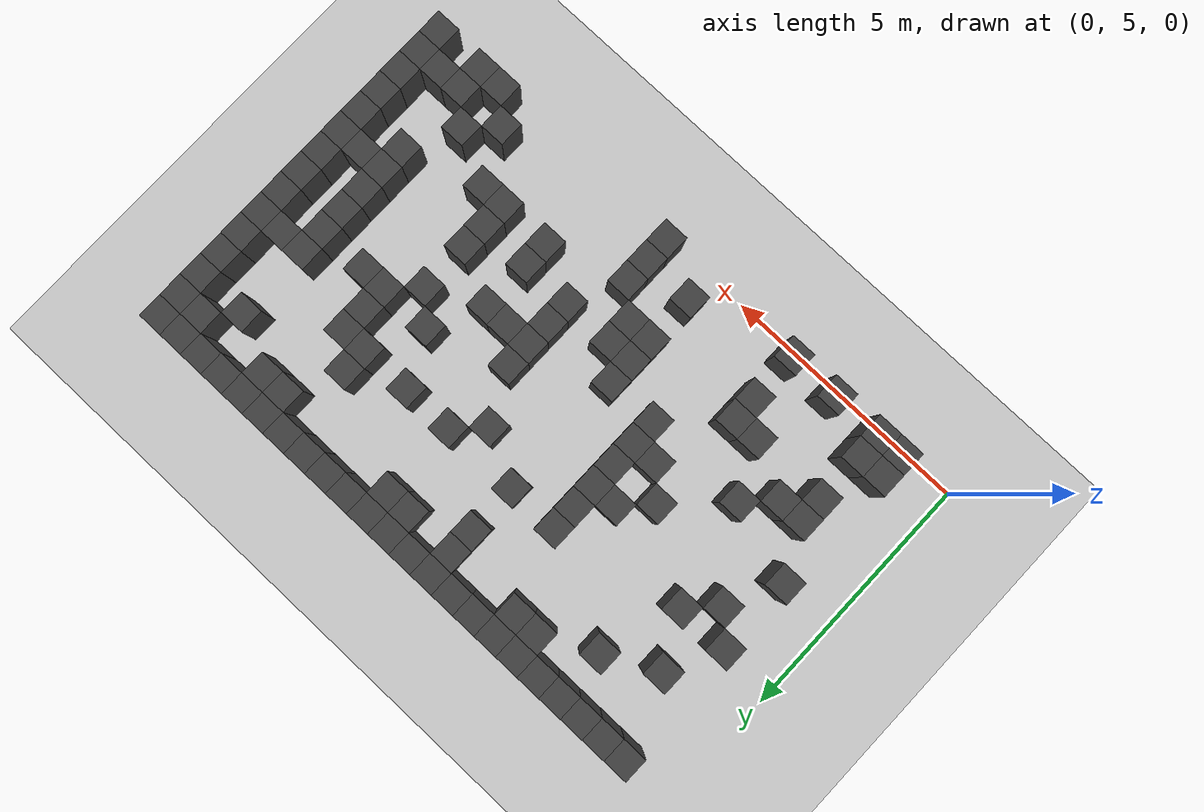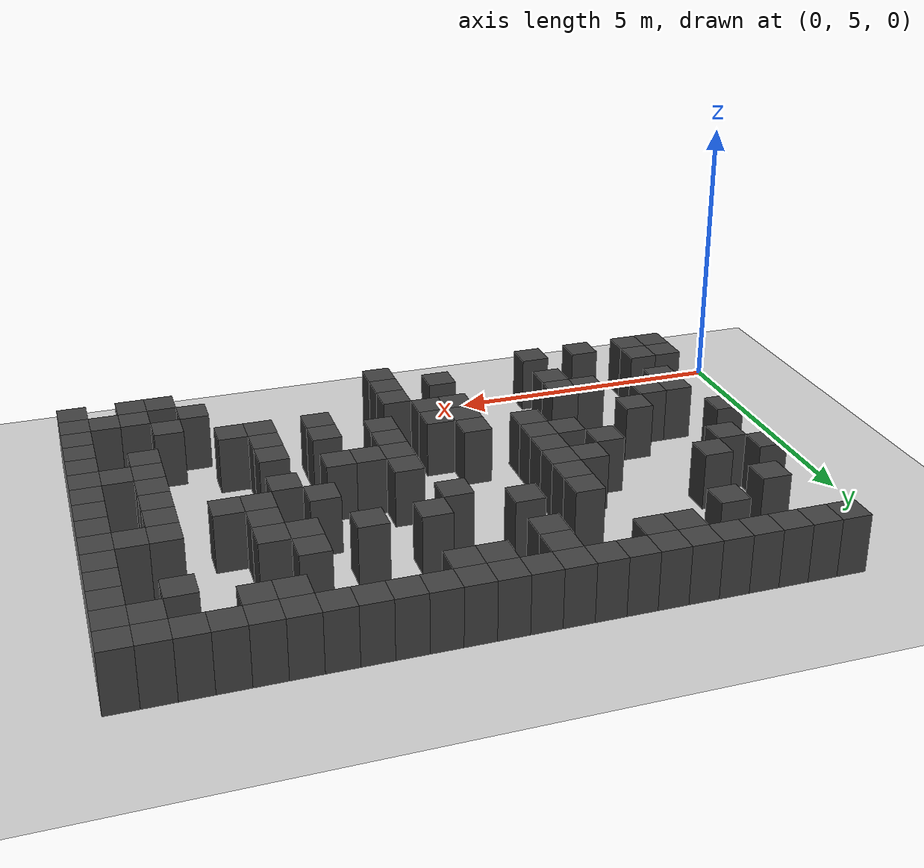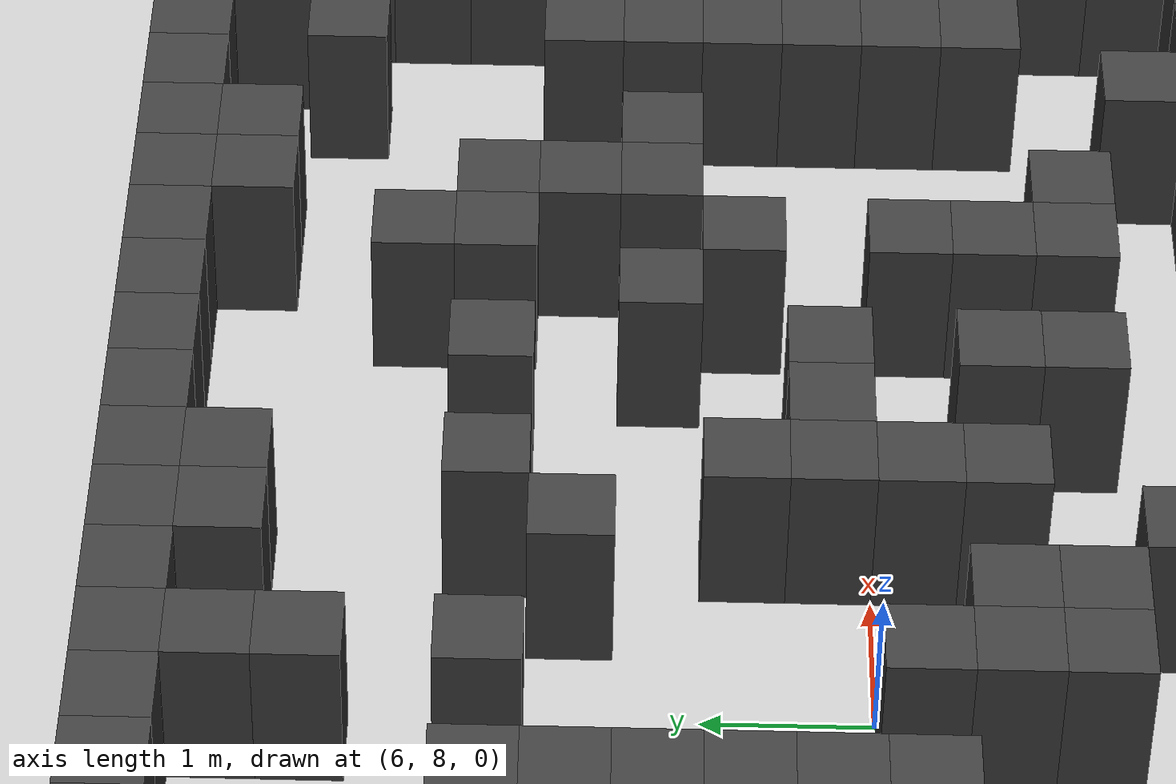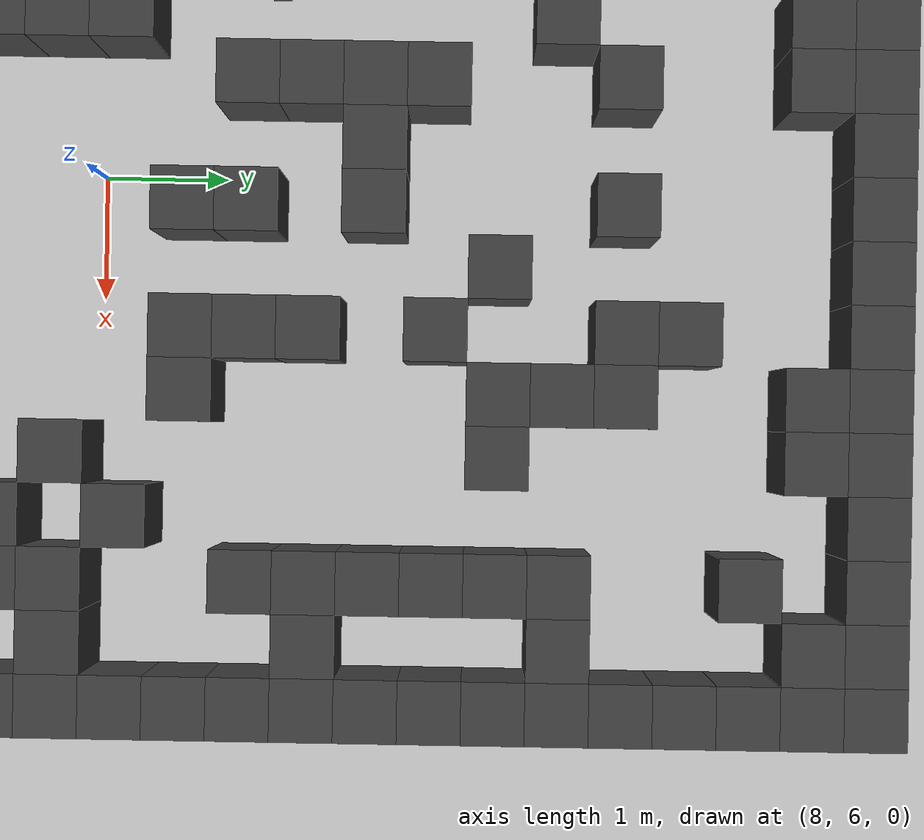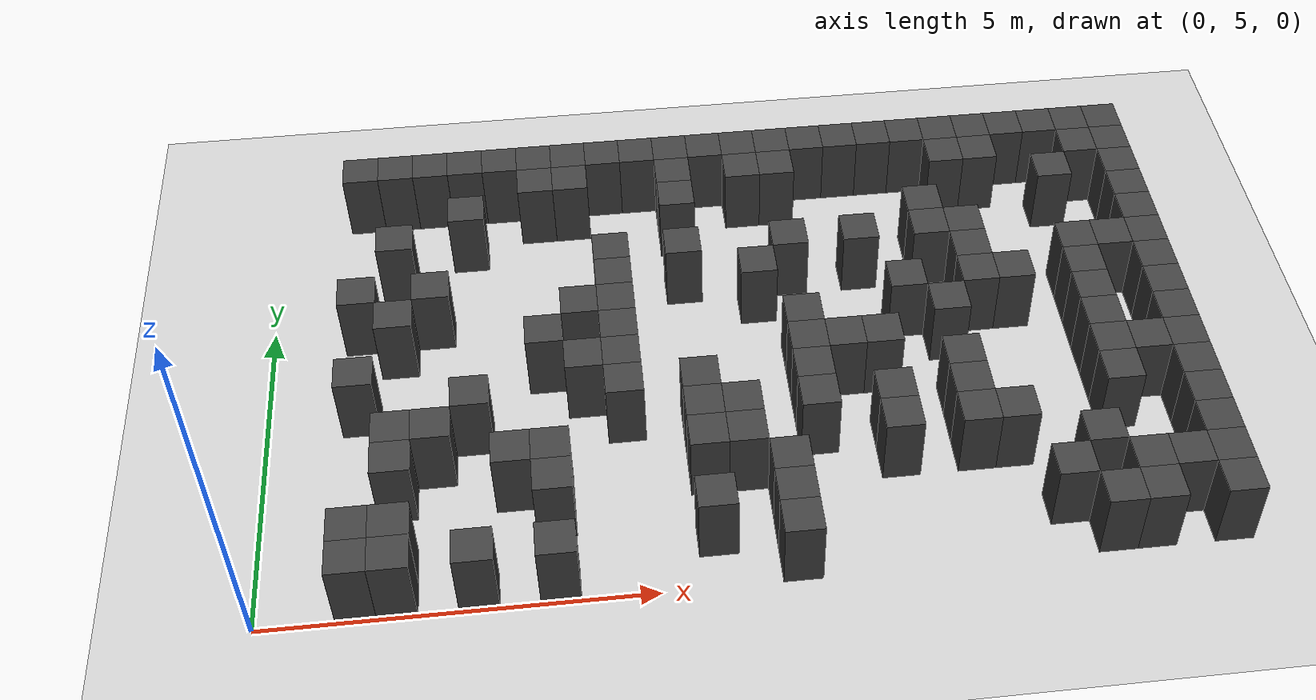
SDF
<sdf version="1.7">
 <world name="map_4818">
  <model name="ground_plane">
   <static>true</static>
   <link name="link">
    <collision name="collision">
     <geometry><plane><normal>0 0 1</normal><size>200 200</size></plane></geometry>
    </collision>
    <visual name="visual">
     <geometry><plane><normal>0 0 1</normal><size>200 200</size></plane></geometry>
     <material><ambient>0.8 0.8 0.8 1</ambient><diffuse>0.8 0.8 0.8 1</diffuse></material>
    </visual>
   </link>
  </model>
  <model name="maze_environment">
   <static>true</static>
   <link name="wall_27">
    <pose>1.250 12.250 0.500 0 0 0</pose>
    <collision name="col"><geometry><box><size>0.5 0.5 1.0</size></box></geometry></collision>
    <visual name="vis">
     <geometry><box><size>0.5 0.5 1.0</size></box></geometry>
     <material><ambient>0.15 0.15 0.15 1</ambient><diffuse>0.25 0.25 0.25 1</diffuse></material>
    </visual>
   </link>
   <link name="wall_28">
    <pose>1.750 12.250 0.500 0 0 0</pose>
    <collision name="col"><geometry><box><size>0.5 0.5 1.0</size></box></geometry></collision>
    <visual name="vis">
     <geometry><box><size>0.5 0.5 1.0</size></box></geometry>
     <material><ambient>0.15 0.15 0.15 1</ambient><diffuse>0.25 0.25 0.25 1</diffuse></material>
    </visual>
   </link>
   <link name="wall_29">
    <pose>2.250 12.250 0.500 0 0 0</pose>
    <collision name="col"><geometry><box><size>0.5 0.5 1.0</size></box></geometry></collision>
    <visual name="vis">
     <geometry><box><size>0.5 0.5 1.0</size></box></geometry>
     <material><ambient>0.15 0.15 0.15 1</ambient><diffuse>0.25 0.25 0.25 1</diffuse></material>
    </visual>
   </link>
   <link name="wall_30">
    <pose>2.750 12.250 0.500 0 0 0</pose>
    <collision name="col"><geometry><box><size>0.5 0.5 1.0</size></box></geometry></collision>
    <visual name="vis">
     <geometry><box><size>0.5 0.5 1.0</size></box></geometry>
     <material><ambient>0.15 0.15 0.15 1</ambient><diffuse>0.25 0.25 0.25 1</diffuse></material>
    </visual>
   </link>
   <link name="wall_31">
    <pose>3.250 12.250 0.500 0 0 0</pose>
    <collision name="col"><geometry><box><size>0.5 0.5 1.0</size></box></geometry></collision>
    <visual name="vis">
     <geometry><box><size>0.5 0.5 1.0</size></box></geometry>
     <material><ambient>0.15 0.15 0.15 1</ambient><diffuse>0.25 0.25 0.25 1</diffuse></material>
    </visual>
   </link>
   <link name="wall_32">
    <pose>3.750 12.250 0.500 0 0 0</pose>
    <collision name="col"><geometry><box><size>0.5 0.5 1.0</size></box></geometry></collision>
    <visual name="vis">
     <geometry><box><size>0.5 0.5 1.0</size></box></geometry>
     <material><ambient>0.15 0.15 0.15 1</ambient><diffuse>0.25 0.25 0.25 1</diffuse></material>
    </visual>
   </link>
   <link name="wall_33">
    <pose>4.250 12.250 0.500 0 0 0</pose>
    <collision name="col"><geometry><box><size>0.5 0.5 1.0</size></box></geometry></collision>
    <visual name="vis">
     <geometry><box><size>0.5 0.5 1.0</size></box></geometry>
     <material><ambient>0.15 0.15 0.15 1</ambient><diffuse>0.25 0.25 0.25 1</diffuse></material>
    </visual>
   </link>
   <link name="wall_34">
    <pose>4.750 12.250 0.500 0 0 0</pose>
    <collision name="col"><geometry><box><size>0.5 0.5 1.0</size></box></geometry></collision>
    <visual name="vis">
     <geometry><box><size>0.5 0.5 1.0</size></box></geometry>
     <material><ambient>0.15 0.15 0.15 1</ambient><diffuse>0.25 0.25 0.25 1</diffuse></material>
    </visual>
   </link>
   <link name="wall_35">
    <pose>5.250 12.250 0.500 0 0 0</pose>
    <collision name="col"><geometry><box><size>0.5 0.5 1.0</size></box></geometry></collision>
    <visual name="vis">
     <geometry><box><size>0.5 0.5 1.0</size></box></geometry>
     <material><ambient>0.15 0.15 0.15 1</ambient><diffuse>0.25 0.25 0.25 1</diffuse></material>
    </visual>
   </link>
   <link name="wall_36">
    <pose>5.750 12.250 0.500 0 0 0</pose>
    <collision name="col"><geometry><box><size>0.5 0.5 1.0</size></box></geometry></collision>
    <visual name="vis">
     <geometry><box><size>0.5 0.5 1.0</size></box></geometry>
     <material><ambient>0.15 0.15 0.15 1</ambient><diffuse>0.25 0.25 0.25 1</diffuse></material>
    </visual>
   </link>
   <link name="wall_37">
    <pose>6.250 12.250 0.500 0 0 0</pose>
    <collision name="col"><geometry><box><size>0.5 0.5 1.0</size></box></geometry></collision>
    <visual name="vis">
     <geometry><box><size>0.5 0.5 1.0</size></box></geometry>
     <material><ambient>0.15 0.15 0.15 1</ambient><diffuse>0.25 0.25 0.25 1</diffuse></material>
    </visual>
   </link>
   <link name="wall_38">
    <pose>6.750 12.250 0.500 0 0 0</pose>
    <collision name="col"><geometry><box><size>0.5 0.5 1.0</size></box></geometry></collision>
    <visual name="vis">
     <geometry><box><size>0.5 0.5 1.0</size></box></geometry>
     <material><ambient>0.15 0.15 0.15 1</ambient><diffuse>0.25 0.25 0.25 1</diffuse></material>
    </visual>
   </link>
   <link name="wall_39">
    <pose>7.250 12.250 0.500 0 0 0</pose>
    <collision name="col"><geometry><box><size>0.5 0.5 1.0</size></box></geometry></collision>
    <visual name="vis">
     <geometry><box><size>0.5 0.5 1.0</size></box></geometry>
     <material><ambient>0.15 0.15 0.15 1</ambient><diffuse>0.25 0.25 0.25 1</diffuse></material>
    </visual>
   </link>
   <link name="wall_40">
    <pose>7.750 12.250 0.500 0 0 0</pose>
    <collision name="col"><geometry><box><size>0.5 0.5 1.0</size></box></geometry></collision>
    <visual name="vis">
     <geometry><box><size>0.5 0.5 1.0</size></box></geometry>
     <material><ambient>0.15 0.15 0.15 1</ambient><diffuse>0.25 0.25 0.25 1</diffuse></material>
    </visual>
   </link>
   <link name="wall_41">
    <pose>8.250 12.250 0.500 0 0 0</pose>
    <collision name="col"><geometry><box><size>0.5 0.5 1.0</size></box></geometry></collision>
    <visual name="vis">
     <geometry><box><size>0.5 0.5 1.0</size></box></geometry>
     <material><ambient>0.15 0.15 0.15 1</ambient><diffuse>0.25 0.25 0.25 1</diffuse></material>
    </visual>
   </link>
   <link name="wall_42">
    <pose>8.750 12.250 0.500 0 0 0</pose>
    <collision name="col"><geometry><box><size>0.5 0.5 1.0</size></box></geometry></collision>
    <visual name="vis">
     <geometry><box><size>0.5 0.5 1.0</size></box></geometry>
     <material><ambient>0.15 0.15 0.15 1</ambient><diffuse>0.25 0.25 0.25 1</diffuse></material>
    </visual>
   </link>
   <link name="wall_43">
    <pose>9.250 12.250 0.500 0 0 0</pose>
    <collision name="col"><geometry><box><size>0.5 0.5 1.0</size></box></geometry></collision>
    <visual name="vis">
     <geometry><box><size>0.5 0.5 1.0</size></box></geometry>
     <material><ambient>0.15 0.15 0.15 1</ambient><diffuse>0.25 0.25 0.25 1</diffuse></material>
    </visual>
   </link>
   <link name="wall_44">
    <pose>9.750 12.250 0.500 0 0 0</pose>
    <collision name="col"><geometry><box><size>0.5 0.5 1.0</size></box></geometry></collision>
    <visual name="vis">
     <geometry><box><size>0.5 0.5 1.0</size></box></geometry>
     <material><ambient>0.15 0.15 0.15 1</ambient><diffuse>0.25 0.25 0.25 1</diffuse></material>
    </visual>
   </link>
   <link name="wall_45">
    <pose>10.250 12.250 0.500 0 0 0</pose>
    <collision name="col"><geometry><box><size>0.5 0.5 1.0</size></box></geometry></collision>
    <visual name="vis">
     <geometry><box><size>0.5 0.5 1.0</size></box></geometry>
     <material><ambient>0.15 0.15 0.15 1</ambient><diffuse>0.25 0.25 0.25 1</diffuse></material>
    </visual>
   </link>
   <link name="wall_46">
    <pose>10.750 12.250 0.500 0 0 0</pose>
    <collision name="col"><geometry><box><size>0.5 0.5 1.0</size></box></geometry></collision>
    <visual name="vis">
     <geometry><box><size>0.5 0.5 1.0</size></box></geometry>
     <material><ambient>0.15 0.15 0.15 1</ambient><diffuse>0.25 0.25 0.25 1</diffuse></material>
    </visual>
   </link>
   <link name="wall_47">
    <pose>11.250 12.250 0.500 0 0 0</pose>
    <collision name="col"><geometry><box><size>0.5 0.5 1.0</size></box></geometry></collision>
    <visual name="vis">
     <geometry><box><size>0.5 0.5 1.0</size></box></geometry>
     <material><ambient>0.15 0.15 0.15 1</ambient><diffuse>0.25 0.25 0.25 1</diffuse></material>
    </visual>
   </link>
   <link name="wall_48">
    <pose>11.750 12.250 0.500 0 0 0</pose>
    <collision name="col"><geometry><box><size>0.5 0.5 1.0</size></box></geometry></collision>
    <visual name="vis">
     <geometry><box><size>0.5 0.5 1.0</size></box></geometry>
     <material><ambient>0.15 0.15 0.15 1</ambient><diffuse>0.25 0.25 0.25 1</diffuse></material>
    </visual>
   </link>
   <link name="wall_49">
    <pose>12.250 12.250 0.500 0 0 0</pose>
    <collision name="col"><geometry><box><size>0.5 0.5 1.0</size></box></geometry></collision>
    <visual name="vis">
     <geometry><box><size>0.5 0.5 1.0</size></box></geometry>
     <material><ambient>0.15 0.15 0.15 1</ambient><diffuse>0.25 0.25 0.25 1</diffuse></material>
    </visual>
   </link>
   <link name="wall_57">
    <pose>3.750 11.750 0.500 0 0 0</pose>
    <collision name="col"><geometry><box><size>0.5 0.5 1.0</size></box></geometry></collision>
    <visual name="vis">
     <geometry><box><size>0.5 0.5 1.0</size></box></geometry>
     <material><ambient>0.15 0.15 0.15 1</ambient><diffuse>0.25 0.25 0.25 1</diffuse></material>
    </visual>
   </link>
   <link name="wall_58">
    <pose>4.250 11.750 0.500 0 0 0</pose>
    <collision name="col"><geometry><box><size>0.5 0.5 1.0</size></box></geometry></collision>
    <visual name="vis">
     <geometry><box><size>0.5 0.5 1.0</size></box></geometry>
     <material><ambient>0.15 0.15 0.15 1</ambient><diffuse>0.25 0.25 0.25 1</diffuse></material>
    </visual>
   </link>
   <link name="wall_59">
    <pose>5.750 11.750 0.500 0 0 0</pose>
    <collision name="col"><geometry><box><size>0.5 0.5 1.0</size></box></geometry></collision>
    <visual name="vis">
     <geometry><box><size>0.5 0.5 1.0</size></box></geometry>
     <material><ambient>0.15 0.15 0.15 1</ambient><diffuse>0.25 0.25 0.25 1</diffuse></material>
    </visual>
   </link>
   <link name="wall_60">
    <pose>6.750 11.750 0.500 0 0 0</pose>
    <collision name="col"><geometry><box><size>0.5 0.5 1.0</size></box></geometry></collision>
    <visual name="vis">
     <geometry><box><size>0.5 0.5 1.0</size></box></geometry>
     <material><ambient>0.15 0.15 0.15 1</ambient><diffuse>0.25 0.25 0.25 1</diffuse></material>
    </visual>
   </link>
   <link name="wall_61">
    <pose>7.250 11.750 0.500 0 0 0</pose>
    <collision name="col"><geometry><box><size>0.5 0.5 1.0</size></box></geometry></collision>
    <visual name="vis">
     <geometry><box><size>0.5 0.5 1.0</size></box></geometry>
     <material><ambient>0.15 0.15 0.15 1</ambient><diffuse>0.25 0.25 0.25 1</diffuse></material>
    </visual>
   </link>
   <link name="wall_62">
    <pose>9.750 11.750 0.500 0 0 0</pose>
    <collision name="col"><geometry><box><size>0.5 0.5 1.0</size></box></geometry></collision>
    <visual name="vis">
     <geometry><box><size>0.5 0.5 1.0</size></box></geometry>
     <material><ambient>0.15 0.15 0.15 1</ambient><diffuse>0.25 0.25 0.25 1</diffuse></material>
    </visual>
   </link>
   <link name="wall_63">
    <pose>10.250 11.750 0.500 0 0 0</pose>
    <collision name="col"><geometry><box><size>0.5 0.5 1.0</size></box></geometry></collision>
    <visual name="vis">
     <geometry><box><size>0.5 0.5 1.0</size></box></geometry>
     <material><ambient>0.15 0.15 0.15 1</ambient><diffuse>0.25 0.25 0.25 1</diffuse></material>
    </visual>
   </link>
   <link name="wall_64">
    <pose>11.750 11.750 0.500 0 0 0</pose>
    <collision name="col"><geometry><box><size>0.5 0.5 1.0</size></box></geometry></collision>
    <visual name="vis">
     <geometry><box><size>0.5 0.5 1.0</size></box></geometry>
     <material><ambient>0.15 0.15 0.15 1</ambient><diffuse>0.25 0.25 0.25 1</diffuse></material>
    </visual>
   </link>
   <link name="wall_65">
    <pose>12.250 11.750 0.500 0 0 0</pose>
    <collision name="col"><geometry><box><size>0.5 0.5 1.0</size></box></geometry></collision>
    <visual name="vis">
     <geometry><box><size>0.5 0.5 1.0</size></box></geometry>
     <material><ambient>0.15 0.15 0.15 1</ambient><diffuse>0.25 0.25 0.25 1</diffuse></material>
    </visual>
   </link>
   <link name="wall_72">
    <pose>2.750 11.250 0.500 0 0 0</pose>
    <collision name="col"><geometry><box><size>0.5 0.5 1.0</size></box></geometry></collision>
    <visual name="vis">
     <geometry><box><size>0.5 0.5 1.0</size></box></geometry>
     <material><ambient>0.15 0.15 0.15 1</ambient><diffuse>0.25 0.25 0.25 1</diffuse></material>
    </visual>
   </link>
   <link name="wall_73">
    <pose>5.750 11.250 0.500 0 0 0</pose>
    <collision name="col"><geometry><box><size>0.5 0.5 1.0</size></box></geometry></collision>
    <visual name="vis">
     <geometry><box><size>0.5 0.5 1.0</size></box></geometry>
     <material><ambient>0.15 0.15 0.15 1</ambient><diffuse>0.25 0.25 0.25 1</diffuse></material>
    </visual>
   </link>
   <link name="wall_74">
    <pose>11.250 11.250 0.500 0 0 0</pose>
    <collision name="col"><geometry><box><size>0.5 0.5 1.0</size></box></geometry></collision>
    <visual name="vis">
     <geometry><box><size>0.5 0.5 1.0</size></box></geometry>
     <material><ambient>0.15 0.15 0.15 1</ambient><diffuse>0.25 0.25 0.25 1</diffuse></material>
    </visual>
   </link>
   <link name="wall_75">
    <pose>12.250 11.250 0.500 0 0 0</pose>
    <collision name="col"><geometry><box><size>0.5 0.5 1.0</size></box></geometry></collision>
    <visual name="vis">
     <geometry><box><size>0.5 0.5 1.0</size></box></geometry>
     <material><ambient>0.15 0.15 0.15 1</ambient><diffuse>0.25 0.25 0.25 1</diffuse></material>
    </visual>
   </link>
   <link name="wall_79">
    <pose>1.750 10.750 0.500 0 0 0</pose>
    <collision name="col"><geometry><box><size>0.5 0.5 1.0</size></box></geometry></collision>
    <visual name="vis">
     <geometry><box><size>0.5 0.5 1.0</size></box></geometry>
     <material><ambient>0.15 0.15 0.15 1</ambient><diffuse>0.25 0.25 0.25 1</diffuse></material>
    </visual>
   </link>
   <link name="wall_80">
    <pose>9.250 10.750 0.500 0 0 0</pose>
    <collision name="col"><geometry><box><size>0.5 0.5 1.0</size></box></geometry></collision>
    <visual name="vis">
     <geometry><box><size>0.5 0.5 1.0</size></box></geometry>
     <material><ambient>0.15 0.15 0.15 1</ambient><diffuse>0.25 0.25 0.25 1</diffuse></material>
    </visual>
   </link>
   <link name="wall_81">
    <pose>12.250 10.750 0.500 0 0 0</pose>
    <collision name="col"><geometry><box><size>0.5 0.5 1.0</size></box></geometry></collision>
    <visual name="vis">
     <geometry><box><size>0.5 0.5 1.0</size></box></geometry>
     <material><ambient>0.15 0.15 0.15 1</ambient><diffuse>0.25 0.25 0.25 1</diffuse></material>
    </visual>
   </link>
   <link name="wall_89">
    <pose>4.750 10.250 0.500 0 0 0</pose>
    <collision name="col"><geometry><box><size>0.5 0.5 1.0</size></box></geometry></collision>
    <visual name="vis">
     <geometry><box><size>0.5 0.5 1.0</size></box></geometry>
     <material><ambient>0.15 0.15 0.15 1</ambient><diffuse>0.25 0.25 0.25 1</diffuse></material>
    </visual>
   </link>
   <link name="wall_90">
    <pose>5.750 10.250 0.500 0 0 0</pose>
    <collision name="col"><geometry><box><size>0.5 0.5 1.0</size></box></geometry></collision>
    <visual name="vis">
     <geometry><box><size>0.5 0.5 1.0</size></box></geometry>
     <material><ambient>0.15 0.15 0.15 1</ambient><diffuse>0.25 0.25 0.25 1</diffuse></material>
    </visual>
   </link>
   <link name="wall_91">
    <pose>7.250 10.250 0.500 0 0 0</pose>
    <collision name="col"><geometry><box><size>0.5 0.5 1.0</size></box></geometry></collision>
    <visual name="vis">
     <geometry><box><size>0.5 0.5 1.0</size></box></geometry>
     <material><ambient>0.15 0.15 0.15 1</ambient><diffuse>0.25 0.25 0.25 1</diffuse></material>
    </visual>
   </link>
   <link name="wall_92">
    <pose>8.250 10.250 0.500 0 0 0</pose>
    <collision name="col"><geometry><box><size>0.5 0.5 1.0</size></box></geometry></collision>
    <visual name="vis">
     <geometry><box><size>0.5 0.5 1.0</size></box></geometry>
     <material><ambient>0.15 0.15 0.15 1</ambient><diffuse>0.25 0.25 0.25 1</diffuse></material>
    </visual>
   </link>
   <link name="wall_93">
    <pose>9.250 10.250 0.500 0 0 0</pose>
    <collision name="col"><geometry><box><size>0.5 0.5 1.0</size></box></geometry></collision>
    <visual name="vis">
     <geometry><box><size>0.5 0.5 1.0</size></box></geometry>
     <material><ambient>0.15 0.15 0.15 1</ambient><diffuse>0.25 0.25 0.25 1</diffuse></material>
    </visual>
   </link>
   <link name="wall_94">
    <pose>9.750 10.250 0.500 0 0 0</pose>
    <collision name="col"><geometry><box><size>0.5 0.5 1.0</size></box></geometry></collision>
    <visual name="vis">
     <geometry><box><size>0.5 0.5 1.0</size></box></geometry>
     <material><ambient>0.15 0.15 0.15 1</ambient><diffuse>0.25 0.25 0.25 1</diffuse></material>
    </visual>
   </link>
   <link name="wall_95">
    <pose>12.250 10.250 0.500 0 0 0</pose>
    <collision name="col"><geometry><box><size>0.5 0.5 1.0</size></box></geometry></collision>
    <visual name="vis">
     <geometry><box><size>0.5 0.5 1.0</size></box></geometry>
     <material><ambient>0.15 0.15 0.15 1</ambient><diffuse>0.25 0.25 0.25 1</diffuse></material>
    </visual>
   </link>
   <link name="wall_100">
    <pose>1.250 9.750 0.500 0 0 0</pose>
    <collision name="col"><geometry><box><size>0.5 0.5 1.0</size></box></geometry></collision>
    <visual name="vis">
     <geometry><box><size>0.5 0.5 1.0</size></box></geometry>
     <material><ambient>0.15 0.15 0.15 1</ambient><diffuse>0.25 0.25 0.25 1</diffuse></material>
    </visual>
   </link>
   <link name="wall_101">
    <pose>2.250 9.750 0.500 0 0 0</pose>
    <collision name="col"><geometry><box><size>0.5 0.5 1.0</size></box></geometry></collision>
    <visual name="vis">
     <geometry><box><size>0.5 0.5 1.0</size></box></geometry>
     <material><ambient>0.15 0.15 0.15 1</ambient><diffuse>0.25 0.25 0.25 1</diffuse></material>
    </visual>
   </link>
   <link name="wall_102">
    <pose>4.750 9.750 0.500 0 0 0</pose>
    <collision name="col"><geometry><box><size>0.5 0.5 1.0</size></box></geometry></collision>
    <visual name="vis">
     <geometry><box><size>0.5 0.5 1.0</size></box></geometry>
     <material><ambient>0.15 0.15 0.15 1</ambient><diffuse>0.25 0.25 0.25 1</diffuse></material>
    </visual>
   </link>
   <link name="wall_103">
    <pose>6.750 9.750 0.500 0 0 0</pose>
    <collision name="col"><geometry><box><size>0.5 0.5 1.0</size></box></geometry></collision>
    <visual name="vis">
     <geometry><box><size>0.5 0.5 1.0</size></box></geometry>
     <material><ambient>0.15 0.15 0.15 1</ambient><diffuse>0.25 0.25 0.25 1</diffuse></material>
    </visual>
   </link>
   <link name="wall_104">
    <pose>9.750 9.750 0.500 0 0 0</pose>
    <collision name="col"><geometry><box><size>0.5 0.5 1.0</size></box></geometry></collision>
    <visual name="vis">
     <geometry><box><size>0.5 0.5 1.0</size></box></geometry>
     <material><ambient>0.15 0.15 0.15 1</ambient><diffuse>0.25 0.25 0.25 1</diffuse></material>
    </visual>
   </link>
   <link name="wall_105">
    <pose>11.250 9.750 0.500 0 0 0</pose>
    <collision name="col"><geometry><box><size>0.5 0.5 1.0</size></box></geometry></collision>
    <visual name="vis">
     <geometry><box><size>0.5 0.5 1.0</size></box></geometry>
     <material><ambient>0.15 0.15 0.15 1</ambient><diffuse>0.25 0.25 0.25 1</diffuse></material>
    </visual>
   </link>
   <link name="wall_106">
    <pose>11.750 9.750 0.500 0 0 0</pose>
    <collision name="col"><geometry><box><size>0.5 0.5 1.0</size></box></geometry></collision>
    <visual name="vis">
     <geometry><box><size>0.5 0.5 1.0</size></box></geometry>
     <material><ambient>0.15 0.15 0.15 1</ambient><diffuse>0.25 0.25 0.25 1</diffuse></material>
    </visual>
   </link>
   <link name="wall_107">
    <pose>12.250 9.750 0.500 0 0 0</pose>
    <collision name="col"><geometry><box><size>0.5 0.5 1.0</size></box></geometry></collision>
    <visual name="vis">
     <geometry><box><size>0.5 0.5 1.0</size></box></geometry>
     <material><ambient>0.15 0.15 0.15 1</ambient><diffuse>0.25 0.25 0.25 1</diffuse></material>
    </visual>
   </link>
   <link name="wall_113">
    <pose>1.750 9.250 0.500 0 0 0</pose>
    <collision name="col"><geometry><box><size>0.5 0.5 1.0</size></box></geometry></collision>
    <visual name="vis">
     <geometry><box><size>0.5 0.5 1.0</size></box></geometry>
     <material><ambient>0.15 0.15 0.15 1</ambient><diffuse>0.25 0.25 0.25 1</diffuse></material>
    </visual>
   </link>
   <link name="wall_114">
    <pose>4.250 9.250 0.500 0 0 0</pose>
    <collision name="col"><geometry><box><size>0.5 0.5 1.0</size></box></geometry></collision>
    <visual name="vis">
     <geometry><box><size>0.5 0.5 1.0</size></box></geometry>
     <material><ambient>0.15 0.15 0.15 1</ambient><diffuse>0.25 0.25 0.25 1</diffuse></material>
    </visual>
   </link>
   <link name="wall_115">
    <pose>4.750 9.250 0.500 0 0 0</pose>
    <collision name="col"><geometry><box><size>0.5 0.5 1.0</size></box></geometry></collision>
    <visual name="vis">
     <geometry><box><size>0.5 0.5 1.0</size></box></geometry>
     <material><ambient>0.15 0.15 0.15 1</ambient><diffuse>0.25 0.25 0.25 1</diffuse></material>
    </visual>
   </link>
   <link name="wall_116">
    <pose>8.750 9.250 0.500 0 0 0</pose>
    <collision name="col"><geometry><box><size>0.5 0.5 1.0</size></box></geometry></collision>
    <visual name="vis">
     <geometry><box><size>0.5 0.5 1.0</size></box></geometry>
     <material><ambient>0.15 0.15 0.15 1</ambient><diffuse>0.25 0.25 0.25 1</diffuse></material>
    </visual>
   </link>
   <link name="wall_117">
    <pose>9.750 9.250 0.500 0 0 0</pose>
    <collision name="col"><geometry><box><size>0.5 0.5 1.0</size></box></geometry></collision>
    <visual name="vis">
     <geometry><box><size>0.5 0.5 1.0</size></box></geometry>
     <material><ambient>0.15 0.15 0.15 1</ambient><diffuse>0.25 0.25 0.25 1</diffuse></material>
    </visual>
   </link>
   <link name="wall_118">
    <pose>10.250 9.250 0.500 0 0 0</pose>
    <collision name="col"><geometry><box><size>0.5 0.5 1.0</size></box></geometry></collision>
    <visual name="vis">
     <geometry><box><size>0.5 0.5 1.0</size></box></geometry>
     <material><ambient>0.15 0.15 0.15 1</ambient><diffuse>0.25 0.25 0.25 1</diffuse></material>
    </visual>
   </link>
   <link name="wall_119">
    <pose>11.250 9.250 0.500 0 0 0</pose>
    <collision name="col"><geometry><box><size>0.5 0.5 1.0</size></box></geometry></collision>
    <visual name="vis">
     <geometry><box><size>0.5 0.5 1.0</size></box></geometry>
     <material><ambient>0.15 0.15 0.15 1</ambient><diffuse>0.25 0.25 0.25 1</diffuse></material>
    </visual>
   </link>
   <link name="wall_120">
    <pose>12.250 9.250 0.500 0 0 0</pose>
    <collision name="col"><geometry><box><size>0.5 0.5 1.0</size></box></geometry></collision>
    <visual name="vis">
     <geometry><box><size>0.5 0.5 1.0</size></box></geometry>
     <material><ambient>0.15 0.15 0.15 1</ambient><diffuse>0.25 0.25 0.25 1</diffuse></material>
    </visual>
   </link>
   <link name="wall_129">
    <pose>3.750 8.750 0.500 0 0 0</pose>
    <collision name="col"><geometry><box><size>0.5 0.5 1.0</size></box></geometry></collision>
    <visual name="vis">
     <geometry><box><size>0.5 0.5 1.0</size></box></geometry>
     <material><ambient>0.15 0.15 0.15 1</ambient><diffuse>0.25 0.25 0.25 1</diffuse></material>
    </visual>
   </link>
   <link name="wall_130">
    <pose>4.750 8.750 0.500 0 0 0</pose>
    <collision name="col"><geometry><box><size>0.5 0.5 1.0</size></box></geometry></collision>
    <visual name="vis">
     <geometry><box><size>0.5 0.5 1.0</size></box></geometry>
     <material><ambient>0.15 0.15 0.15 1</ambient><diffuse>0.25 0.25 0.25 1</diffuse></material>
    </visual>
   </link>
   <link name="wall_131">
    <pose>7.250 8.750 0.500 0 0 0</pose>
    <collision name="col"><geometry><box><size>0.5 0.5 1.0</size></box></geometry></collision>
    <visual name="vis">
     <geometry><box><size>0.5 0.5 1.0</size></box></geometry>
     <material><ambient>0.15 0.15 0.15 1</ambient><diffuse>0.25 0.25 0.25 1</diffuse></material>
    </visual>
   </link>
   <link name="wall_132">
    <pose>9.250 8.750 0.500 0 0 0</pose>
    <collision name="col"><geometry><box><size>0.5 0.5 1.0</size></box></geometry></collision>
    <visual name="vis">
     <geometry><box><size>0.5 0.5 1.0</size></box></geometry>
     <material><ambient>0.15 0.15 0.15 1</ambient><diffuse>0.25 0.25 0.25 1</diffuse></material>
    </visual>
   </link>
   <link name="wall_133">
    <pose>11.250 8.750 0.500 0 0 0</pose>
    <collision name="col"><geometry><box><size>0.5 0.5 1.0</size></box></geometry></collision>
    <visual name="vis">
     <geometry><box><size>0.5 0.5 1.0</size></box></geometry>
     <material><ambient>0.15 0.15 0.15 1</ambient><diffuse>0.25 0.25 0.25 1</diffuse></material>
    </visual>
   </link>
   <link name="wall_134">
    <pose>12.250 8.750 0.500 0 0 0</pose>
    <collision name="col"><geometry><box><size>0.5 0.5 1.0</size></box></geometry></collision>
    <visual name="vis">
     <geometry><box><size>0.5 0.5 1.0</size></box></geometry>
     <material><ambient>0.15 0.15 0.15 1</ambient><diffuse>0.25 0.25 0.25 1</diffuse></material>
    </visual>
   </link>
   <link name="wall_142">
    <pose>1.250 8.250 0.500 0 0 0</pose>
    <collision name="col"><geometry><box><size>0.5 0.5 1.0</size></box></geometry></collision>
    <visual name="vis">
     <geometry><box><size>0.5 0.5 1.0</size></box></geometry>
     <material><ambient>0.15 0.15 0.15 1</ambient><diffuse>0.25 0.25 0.25 1</diffuse></material>
    </visual>
   </link>
   <link name="wall_143">
    <pose>4.250 8.250 0.500 0 0 0</pose>
    <collision name="col"><geometry><box><size>0.5 0.5 1.0</size></box></geometry></collision>
    <visual name="vis">
     <geometry><box><size>0.5 0.5 1.0</size></box></geometry>
     <material><ambient>0.15 0.15 0.15 1</ambient><diffuse>0.25 0.25 0.25 1</diffuse></material>
    </visual>
   </link>
   <link name="wall_144">
    <pose>4.750 8.250 0.500 0 0 0</pose>
    <collision name="col"><geometry><box><size>0.5 0.5 1.0</size></box></geometry></collision>
    <visual name="vis">
     <geometry><box><size>0.5 0.5 1.0</size></box></geometry>
     <material><ambient>0.15 0.15 0.15 1</ambient><diffuse>0.25 0.25 0.25 1</diffuse></material>
    </visual>
   </link>
   <link name="wall_145">
    <pose>7.250 8.250 0.500 0 0 0</pose>
    <collision name="col"><geometry><box><size>0.5 0.5 1.0</size></box></geometry></collision>
    <visual name="vis">
     <geometry><box><size>0.5 0.5 1.0</size></box></geometry>
     <material><ambient>0.15 0.15 0.15 1</ambient><diffuse>0.25 0.25 0.25 1</diffuse></material>
    </visual>
   </link>
   <link name="wall_146">
    <pose>7.750 8.250 0.500 0 0 0</pose>
    <collision name="col"><geometry><box><size>0.5 0.5 1.0</size></box></geometry></collision>
    <visual name="vis">
     <geometry><box><size>0.5 0.5 1.0</size></box></geometry>
     <material><ambient>0.15 0.15 0.15 1</ambient><diffuse>0.25 0.25 0.25 1</diffuse></material>
    </visual>
   </link>
   <link name="wall_147">
    <pose>8.250 8.250 0.500 0 0 0</pose>
    <collision name="col"><geometry><box><size>0.5 0.5 1.0</size></box></geometry></collision>
    <visual name="vis">
     <geometry><box><size>0.5 0.5 1.0</size></box></geometry>
     <material><ambient>0.15 0.15 0.15 1</ambient><diffuse>0.25 0.25 0.25 1</diffuse></material>
    </visual>
   </link>
   <link name="wall_148">
    <pose>11.250 8.250 0.500 0 0 0</pose>
    <collision name="col"><geometry><box><size>0.5 0.5 1.0</size></box></geometry></collision>
    <visual name="vis">
     <geometry><box><size>0.5 0.5 1.0</size></box></geometry>
     <material><ambient>0.15 0.15 0.15 1</ambient><diffuse>0.25 0.25 0.25 1</diffuse></material>
    </visual>
   </link>
   <link name="wall_149">
    <pose>12.250 8.250 0.500 0 0 0</pose>
    <collision name="col"><geometry><box><size>0.5 0.5 1.0</size></box></geometry></collision>
    <visual name="vis">
     <geometry><box><size>0.5 0.5 1.0</size></box></geometry>
     <material><ambient>0.15 0.15 0.15 1</ambient><diffuse>0.25 0.25 0.25 1</diffuse></material>
    </visual>
   </link>
   <link name="wall_159">
    <pose>2.750 7.750 0.500 0 0 0</pose>
    <collision name="col"><geometry><box><size>0.5 0.5 1.0</size></box></geometry></collision>
    <visual name="vis">
     <geometry><box><size>0.5 0.5 1.0</size></box></geometry>
     <material><ambient>0.15 0.15 0.15 1</ambient><diffuse>0.25 0.25 0.25 1</diffuse></material>
    </visual>
   </link>
   <link name="wall_160">
    <pose>4.750 7.750 0.500 0 0 0</pose>
    <collision name="col"><geometry><box><size>0.5 0.5 1.0</size></box></geometry></collision>
    <visual name="vis">
     <geometry><box><size>0.5 0.5 1.0</size></box></geometry>
     <material><ambient>0.15 0.15 0.15 1</ambient><diffuse>0.25 0.25 0.25 1</diffuse></material>
    </visual>
   </link>
   <link name="wall_161">
    <pose>5.750 7.750 0.500 0 0 0</pose>
    <collision name="col"><geometry><box><size>0.5 0.5 1.0</size></box></geometry></collision>
    <visual name="vis">
     <geometry><box><size>0.5 0.5 1.0</size></box></geometry>
     <material><ambient>0.15 0.15 0.15 1</ambient><diffuse>0.25 0.25 0.25 1</diffuse></material>
    </visual>
   </link>
   <link name="wall_162">
    <pose>7.250 7.750 0.500 0 0 0</pose>
    <collision name="col"><geometry><box><size>0.5 0.5 1.0</size></box></geometry></collision>
    <visual name="vis">
     <geometry><box><size>0.5 0.5 1.0</size></box></geometry>
     <material><ambient>0.15 0.15 0.15 1</ambient><diffuse>0.25 0.25 0.25 1</diffuse></material>
    </visual>
   </link>
   <link name="wall_163">
    <pose>9.250 7.750 0.500 0 0 0</pose>
    <collision name="col"><geometry><box><size>0.5 0.5 1.0</size></box></geometry></collision>
    <visual name="vis">
     <geometry><box><size>0.5 0.5 1.0</size></box></geometry>
     <material><ambient>0.15 0.15 0.15 1</ambient><diffuse>0.25 0.25 0.25 1</diffuse></material>
    </visual>
   </link>
   <link name="wall_164">
    <pose>11.250 7.750 0.500 0 0 0</pose>
    <collision name="col"><geometry><box><size>0.5 0.5 1.0</size></box></geometry></collision>
    <visual name="vis">
     <geometry><box><size>0.5 0.5 1.0</size></box></geometry>
     <material><ambient>0.15 0.15 0.15 1</ambient><diffuse>0.25 0.25 0.25 1</diffuse></material>
    </visual>
   </link>
   <link name="wall_165">
    <pose>11.750 7.750 0.500 0 0 0</pose>
    <collision name="col"><geometry><box><size>0.5 0.5 1.0</size></box></geometry></collision>
    <visual name="vis">
     <geometry><box><size>0.5 0.5 1.0</size></box></geometry>
     <material><ambient>0.15 0.15 0.15 1</ambient><diffuse>0.25 0.25 0.25 1</diffuse></material>
    </visual>
   </link>
   <link name="wall_166">
    <pose>12.250 7.750 0.500 0 0 0</pose>
    <collision name="col"><geometry><box><size>0.5 0.5 1.0</size></box></geometry></collision>
    <visual name="vis">
     <geometry><box><size>0.5 0.5 1.0</size></box></geometry>
     <material><ambient>0.15 0.15 0.15 1</ambient><diffuse>0.25 0.25 0.25 1</diffuse></material>
    </visual>
   </link>
   <link name="wall_172">
    <pose>1.750 7.250 0.500 0 0 0</pose>
    <collision name="col"><geometry><box><size>0.5 0.5 1.0</size></box></geometry></collision>
    <visual name="vis">
     <geometry><box><size>0.5 0.5 1.0</size></box></geometry>
     <material><ambient>0.15 0.15 0.15 1</ambient><diffuse>0.25 0.25 0.25 1</diffuse></material>
    </visual>
   </link>
   <link name="wall_173">
    <pose>2.250 7.250 0.500 0 0 0</pose>
    <collision name="col"><geometry><box><size>0.5 0.5 1.0</size></box></geometry></collision>
    <visual name="vis">
     <geometry><box><size>0.5 0.5 1.0</size></box></geometry>
     <material><ambient>0.15 0.15 0.15 1</ambient><diffuse>0.25 0.25 0.25 1</diffuse></material>
    </visual>
   </link>
   <link name="wall_174">
    <pose>5.750 7.250 0.500 0 0 0</pose>
    <collision name="col"><geometry><box><size>0.5 0.5 1.0</size></box></geometry></collision>
    <visual name="vis">
     <geometry><box><size>0.5 0.5 1.0</size></box></geometry>
     <material><ambient>0.15 0.15 0.15 1</ambient><diffuse>0.25 0.25 0.25 1</diffuse></material>
    </visual>
   </link>
   <link name="wall_175">
    <pose>6.250 7.250 0.500 0 0 0</pose>
    <collision name="col"><geometry><box><size>0.5 0.5 1.0</size></box></geometry></collision>
    <visual name="vis">
     <geometry><box><size>0.5 0.5 1.0</size></box></geometry>
     <material><ambient>0.15 0.15 0.15 1</ambient><diffuse>0.25 0.25 0.25 1</diffuse></material>
    </visual>
   </link>
   <link name="wall_176">
    <pose>7.250 7.250 0.500 0 0 0</pose>
    <collision name="col"><geometry><box><size>0.5 0.5 1.0</size></box></geometry></collision>
    <visual name="vis">
     <geometry><box><size>0.5 0.5 1.0</size></box></geometry>
     <material><ambient>0.15 0.15 0.15 1</ambient><diffuse>0.25 0.25 0.25 1</diffuse></material>
    </visual>
   </link>
   <link name="wall_177">
    <pose>8.250 7.250 0.500 0 0 0</pose>
    <collision name="col"><geometry><box><size>0.5 0.5 1.0</size></box></geometry></collision>
    <visual name="vis">
     <geometry><box><size>0.5 0.5 1.0</size></box></geometry>
     <material><ambient>0.15 0.15 0.15 1</ambient><diffuse>0.25 0.25 0.25 1</diffuse></material>
    </visual>
   </link>
   <link name="wall_178">
    <pose>9.250 7.250 0.500 0 0 0</pose>
    <collision name="col"><geometry><box><size>0.5 0.5 1.0</size></box></geometry></collision>
    <visual name="vis">
     <geometry><box><size>0.5 0.5 1.0</size></box></geometry>
     <material><ambient>0.15 0.15 0.15 1</ambient><diffuse>0.25 0.25 0.25 1</diffuse></material>
    </visual>
   </link>
   <link name="wall_179">
    <pose>11.250 7.250 0.500 0 0 0</pose>
    <collision name="col"><geometry><box><size>0.5 0.5 1.0</size></box></geometry></collision>
    <visual name="vis">
     <geometry><box><size>0.5 0.5 1.0</size></box></geometry>
     <material><ambient>0.15 0.15 0.15 1</ambient><diffuse>0.25 0.25 0.25 1</diffuse></material>
    </visual>
   </link>
   <link name="wall_180">
    <pose>12.250 7.250 0.500 0 0 0</pose>
    <collision name="col"><geometry><box><size>0.5 0.5 1.0</size></box></geometry></collision>
    <visual name="vis">
     <geometry><box><size>0.5 0.5 1.0</size></box></geometry>
     <material><ambient>0.15 0.15 0.15 1</ambient><diffuse>0.25 0.25 0.25 1</diffuse></material>
    </visual>
   </link>
   <link name="wall_188">
    <pose>1.750 6.750 0.500 0 0 0</pose>
    <collision name="col"><geometry><box><size>0.5 0.5 1.0</size></box></geometry></collision>
    <visual name="vis">
     <geometry><box><size>0.5 0.5 1.0</size></box></geometry>
     <material><ambient>0.15 0.15 0.15 1</ambient><diffuse>0.25 0.25 0.25 1</diffuse></material>
    </visual>
   </link>
   <link name="wall_189">
    <pose>3.250 6.750 0.500 0 0 0</pose>
    <collision name="col"><geometry><box><size>0.5 0.5 1.0</size></box></geometry></collision>
    <visual name="vis">
     <geometry><box><size>0.5 0.5 1.0</size></box></geometry>
     <material><ambient>0.15 0.15 0.15 1</ambient><diffuse>0.25 0.25 0.25 1</diffuse></material>
    </visual>
   </link>
   <link name="wall_190">
    <pose>3.750 6.750 0.500 0 0 0</pose>
    <collision name="col"><geometry><box><size>0.5 0.5 1.0</size></box></geometry></collision>
    <visual name="vis">
     <geometry><box><size>0.5 0.5 1.0</size></box></geometry>
     <material><ambient>0.15 0.15 0.15 1</ambient><diffuse>0.25 0.25 0.25 1</diffuse></material>
    </visual>
   </link>
   <link name="wall_191">
    <pose>5.750 6.750 0.500 0 0 0</pose>
    <collision name="col"><geometry><box><size>0.5 0.5 1.0</size></box></geometry></collision>
    <visual name="vis">
     <geometry><box><size>0.5 0.5 1.0</size></box></geometry>
     <material><ambient>0.15 0.15 0.15 1</ambient><diffuse>0.25 0.25 0.25 1</diffuse></material>
    </visual>
   </link>
   <link name="wall_192">
    <pose>6.250 6.750 0.500 0 0 0</pose>
    <collision name="col"><geometry><box><size>0.5 0.5 1.0</size></box></geometry></collision>
    <visual name="vis">
     <geometry><box><size>0.5 0.5 1.0</size></box></geometry>
     <material><ambient>0.15 0.15 0.15 1</ambient><diffuse>0.25 0.25 0.25 1</diffuse></material>
    </visual>
   </link>
   <link name="wall_193">
    <pose>8.250 6.750 0.500 0 0 0</pose>
    <collision name="col"><geometry><box><size>0.5 0.5 1.0</size></box></geometry></collision>
    <visual name="vis">
     <geometry><box><size>0.5 0.5 1.0</size></box></geometry>
     <material><ambient>0.15 0.15 0.15 1</ambient><diffuse>0.25 0.25 0.25 1</diffuse></material>
    </visual>
   </link>
   <link name="wall_194">
    <pose>9.250 6.750 0.500 0 0 0</pose>
    <collision name="col"><geometry><box><size>0.5 0.5 1.0</size></box></geometry></collision>
    <visual name="vis">
     <geometry><box><size>0.5 0.5 1.0</size></box></geometry>
     <material><ambient>0.15 0.15 0.15 1</ambient><diffuse>0.25 0.25 0.25 1</diffuse></material>
    </visual>
   </link>
   <link name="wall_195">
    <pose>9.750 6.750 0.500 0 0 0</pose>
    <collision name="col"><geometry><box><size>0.5 0.5 1.0</size></box></geometry></collision>
    <visual name="vis">
     <geometry><box><size>0.5 0.5 1.0</size></box></geometry>
     <material><ambient>0.15 0.15 0.15 1</ambient><diffuse>0.25 0.25 0.25 1</diffuse></material>
    </visual>
   </link>
   <link name="wall_196">
    <pose>12.250 6.750 0.500 0 0 0</pose>
    <collision name="col"><geometry><box><size>0.5 0.5 1.0</size></box></geometry></collision>
    <visual name="vis">
     <geometry><box><size>0.5 0.5 1.0</size></box></geometry>
     <material><ambient>0.15 0.15 0.15 1</ambient><diffuse>0.25 0.25 0.25 1</diffuse></material>
    </visual>
   </link>
   <link name="wall_200">
    <pose>3.750 6.250 0.500 0 0 0</pose>
    <collision name="col"><geometry><box><size>0.5 0.5 1.0</size></box></geometry></collision>
    <visual name="vis">
     <geometry><box><size>0.5 0.5 1.0</size></box></geometry>
     <material><ambient>0.15 0.15 0.15 1</ambient><diffuse>0.25 0.25 0.25 1</diffuse></material>
    </visual>
   </link>
   <link name="wall_201">
    <pose>6.750 6.250 0.500 0 0 0</pose>
    <collision name="col"><geometry><box><size>0.5 0.5 1.0</size></box></geometry></collision>
    <visual name="vis">
     <geometry><box><size>0.5 0.5 1.0</size></box></geometry>
     <material><ambient>0.15 0.15 0.15 1</ambient><diffuse>0.25 0.25 0.25 1</diffuse></material>
    </visual>
   </link>
   <link name="wall_202">
    <pose>10.750 6.250 0.500 0 0 0</pose>
    <collision name="col"><geometry><box><size>0.5 0.5 1.0</size></box></geometry></collision>
    <visual name="vis">
     <geometry><box><size>0.5 0.5 1.0</size></box></geometry>
     <material><ambient>0.15 0.15 0.15 1</ambient><diffuse>0.25 0.25 0.25 1</diffuse></material>
    </visual>
   </link>
   <link name="wall_203">
    <pose>12.250 6.250 0.500 0 0 0</pose>
    <collision name="col"><geometry><box><size>0.5 0.5 1.0</size></box></geometry></collision>
    <visual name="vis">
     <geometry><box><size>0.5 0.5 1.0</size></box></geometry>
     <material><ambient>0.15 0.15 0.15 1</ambient><diffuse>0.25 0.25 0.25 1</diffuse></material>
    </visual>
   </link>
   <link name="wall_209">
    <pose>1.250 5.750 0.500 0 0 0</pose>
    <collision name="col"><geometry><box><size>0.5 0.5 1.0</size></box></geometry></collision>
    <visual name="vis">
     <geometry><box><size>0.5 0.5 1.0</size></box></geometry>
     <material><ambient>0.15 0.15 0.15 1</ambient><diffuse>0.25 0.25 0.25 1</diffuse></material>
    </visual>
   </link>
   <link name="wall_210">
    <pose>1.750 5.750 0.500 0 0 0</pose>
    <collision name="col"><geometry><box><size>0.5 0.5 1.0</size></box></geometry></collision>
    <visual name="vis">
     <geometry><box><size>0.5 0.5 1.0</size></box></geometry>
     <material><ambient>0.15 0.15 0.15 1</ambient><diffuse>0.25 0.25 0.25 1</diffuse></material>
    </visual>
   </link>
   <link name="wall_211">
    <pose>5.750 5.750 0.500 0 0 0</pose>
    <collision name="col"><geometry><box><size>0.5 0.5 1.0</size></box></geometry></collision>
    <visual name="vis">
     <geometry><box><size>0.5 0.5 1.0</size></box></geometry>
     <material><ambient>0.15 0.15 0.15 1</ambient><diffuse>0.25 0.25 0.25 1</diffuse></material>
    </visual>
   </link>
   <link name="wall_212">
    <pose>6.750 5.750 0.500 0 0 0</pose>
    <collision name="col"><geometry><box><size>0.5 0.5 1.0</size></box></geometry></collision>
    <visual name="vis">
     <geometry><box><size>0.5 0.5 1.0</size></box></geometry>
     <material><ambient>0.15 0.15 0.15 1</ambient><diffuse>0.25 0.25 0.25 1</diffuse></material>
    </visual>
   </link>
   <link name="wall_213">
    <pose>10.250 5.750 0.500 0 0 0</pose>
    <collision name="col"><geometry><box><size>0.5 0.5 1.0</size></box></geometry></collision>
    <visual name="vis">
     <geometry><box><size>0.5 0.5 1.0</size></box></geometry>
     <material><ambient>0.15 0.15 0.15 1</ambient><diffuse>0.25 0.25 0.25 1</diffuse></material>
    </visual>
   </link>
   <link name="wall_214">
    <pose>11.250 5.750 0.500 0 0 0</pose>
    <collision name="col"><geometry><box><size>0.5 0.5 1.0</size></box></geometry></collision>
    <visual name="vis">
     <geometry><box><size>0.5 0.5 1.0</size></box></geometry>
     <material><ambient>0.15 0.15 0.15 1</ambient><diffuse>0.25 0.25 0.25 1</diffuse></material>
    </visual>
   </link>
   <link name="wall_215">
    <pose>11.750 5.750 0.500 0 0 0</pose>
    <collision name="col"><geometry><box><size>0.5 0.5 1.0</size></box></geometry></collision>
    <visual name="vis">
     <geometry><box><size>0.5 0.5 1.0</size></box></geometry>
     <material><ambient>0.15 0.15 0.15 1</ambient><diffuse>0.25 0.25 0.25 1</diffuse></material>
    </visual>
   </link>
   <link name="wall_216">
    <pose>12.250 5.750 0.500 0 0 0</pose>
    <collision name="col"><geometry><box><size>0.5 0.5 1.0</size></box></geometry></collision>
    <visual name="vis">
     <geometry><box><size>0.5 0.5 1.0</size></box></geometry>
     <material><ambient>0.15 0.15 0.15 1</ambient><diffuse>0.25 0.25 0.25 1</diffuse></material>
    </visual>
   </link>
   <link name="wall_225">
    <pose>1.250 5.250 0.500 0 0 0</pose>
    <collision name="col"><geometry><box><size>0.5 0.5 1.0</size></box></geometry></collision>
    <visual name="vis">
     <geometry><box><size>0.5 0.5 1.0</size></box></geometry>
     <material><ambient>0.15 0.15 0.15 1</ambient><diffuse>0.25 0.25 0.25 1</diffuse></material>
    </visual>
   </link>
   <link name="wall_226">
    <pose>1.750 5.250 0.500 0 0 0</pose>
    <collision name="col"><geometry><box><size>0.5 0.5 1.0</size></box></geometry></collision>
    <visual name="vis">
     <geometry><box><size>0.5 0.5 1.0</size></box></geometry>
     <material><ambient>0.15 0.15 0.15 1</ambient><diffuse>0.25 0.25 0.25 1</diffuse></material>
    </visual>
   </link>
   <link name="wall_227">
    <pose>2.750 5.250 0.500 0 0 0</pose>
    <collision name="col"><geometry><box><size>0.5 0.5 1.0</size></box></geometry></collision>
    <visual name="vis">
     <geometry><box><size>0.5 0.5 1.0</size></box></geometry>
     <material><ambient>0.15 0.15 0.15 1</ambient><diffuse>0.25 0.25 0.25 1</diffuse></material>
    </visual>
   </link>
   <link name="wall_228">
    <pose>3.750 5.250 0.500 0 0 0</pose>
    <collision name="col"><geometry><box><size>0.5 0.5 1.0</size></box></geometry></collision>
    <visual name="vis">
     <geometry><box><size>0.5 0.5 1.0</size></box></geometry>
     <material><ambient>0.15 0.15 0.15 1</ambient><diffuse>0.25 0.25 0.25 1</diffuse></material>
    </visual>
   </link>
   <link name="wall_229">
    <pose>6.750 5.250 0.500 0 0 0</pose>
    <collision name="col"><geometry><box><size>0.5 0.5 1.0</size></box></geometry></collision>
    <visual name="vis">
     <geometry><box><size>0.5 0.5 1.0</size></box></geometry>
     <material><ambient>0.15 0.15 0.15 1</ambient><diffuse>0.25 0.25 0.25 1</diffuse></material>
    </visual>
   </link>
   <link name="wall_230">
    <pose>10.750 5.250 0.500 0 0 0</pose>
    <collision name="col"><geometry><box><size>0.5 0.5 1.0</size></box></geometry></collision>
    <visual name="vis">
     <geometry><box><size>0.5 0.5 1.0</size></box></geometry>
     <material><ambient>0.15 0.15 0.15 1</ambient><diffuse>0.25 0.25 0.25 1</diffuse></material>
    </visual>
   </link>
   <link name="wall_231">
    <pose>11.250 5.250 0.500 0 0 0</pose>
    <collision name="col"><geometry><box><size>0.5 0.5 1.0</size></box></geometry></collision>
    <visual name="vis">
     <geometry><box><size>0.5 0.5 1.0</size></box></geometry>
     <material><ambient>0.15 0.15 0.15 1</ambient><diffuse>0.25 0.25 0.25 1</diffuse></material>
    </visual>
   </link>
   <link name="wall_232">
    <pose>12.250 5.250 0.500 0 0 0</pose>
    <collision name="col"><geometry><box><size>0.5 0.5 1.0</size></box></geometry></collision>
    <visual name="vis">
     <geometry><box><size>0.5 0.5 1.0</size></box></geometry>
     <material><ambient>0.15 0.15 0.15 1</ambient><diffuse>0.25 0.25 0.25 1</diffuse></material>
    </visual>
   </link>
  </model>
 </world>
</sdf>
